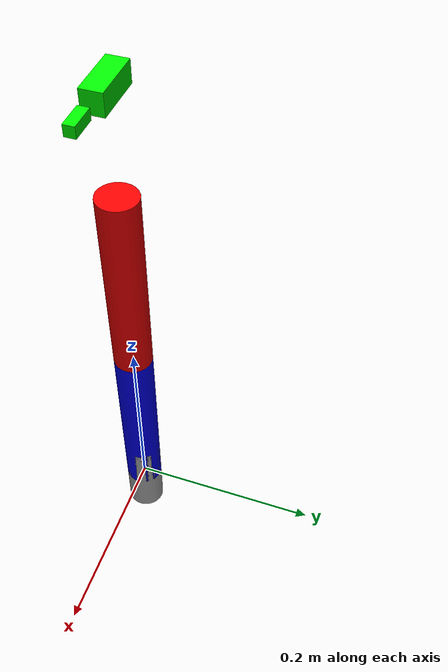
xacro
<?xml version="1.0"?>
<robot name="four_dof_arm" xmlns:xacro="http://ros.org/wiki/xacro">
  <!-- Define constants -->
  <xacro:property name="link_length" value="0.2" />
  <xacro:property name="link_radius" value="0.02" />
  <xacro:property name="base_height" value="0.1" />
  <xacro:property name="gripper_length" value="0.05" />
  <xacro:property name="pi" value="3.14159265359" />

  <!-- Base link -->
  <link name="base_link">
    <visual>
      <geometry>
        <cylinder radius="${link_radius}" length="${base_height}" />
      </geometry>
      <material name="silver">
        <color rgba="0.7 0.7 0.7 1.0" />
      </material>
    </visual>
    <collision>
      <geometry>
        <cylinder radius="${link_radius}" length="${base_height}" />
      </geometry>
    </collision>
    <inertial>
      <mass value="1.0" />
      <inertia ixx="0.01" ixy="0.0" ixz="0.0" iyy="0.01" iyz="0.0" izz="0.005" />
    </inertial>
  </link>

  <!-- Base to shoulder joint -->
  <joint name="base_joint" type="revolute">
    <parent link="base_link" />
    <child link="shoulder_link" />
    <origin xyz="0 0 ${base_height}" rpy="0 0 0" />
    <axis xyz="0 0 1" />
    <limit lower="-${pi/2}" upper="${pi/2}" effort="50" velocity="1.0" />
  </joint>

  <!-- Shoulder link -->
  <link name="shoulder_link">
    <visual>
      <geometry>
        <cylinder radius="${link_radius}" length="${link_length}" />
      </geometry>
      <material name="blue">
        <color rgba="0 0 1 1" />
      </material>
    </visual>
    <collision>
      <geometry>
        <cylinder radius="${link_radius}" length="${link_length}" />
      </geometry>
    </collision>
    <inertial>
      <mass value="0.5" />
      <inertia ixx="0.005" ixy="0.0" ixz="0.0" iyy="0.005" iyz="0.0" izz="0.002" />
    </inertial>
  </link>

  <!-- Shoulder to elbow joint -->
  <joint name="shoulder_joint" type="revolute">
    <parent link="shoulder_link" />
    <child link="elbow_link" />
    <origin xyz="0 0 ${link_length}" rpy="0 0 0" />
    <axis xyz="0 1 0" />
    <limit lower="-${pi/2}" upper="${pi/2}" effort="50" velocity="1.0" />
  </joint>

  <!-- Elbow link -->
  <link name="elbow_link">
    <visual>
      <geometry>
        <cylinder radius="${link_radius}" length="${link_length}" />
      </geometry>
      <material name="red">
        <color rgba="1 0 0 1" />
      </material>
    </visual>
    <collision>
      <geometry>
        <cylinder radius="${link_radius}" length="${link_length}" />
      </geometry>
    </collision>
    <inertial>
      <mass value="0.5" />
      <inertia ixx="0.005" ixy="0.0" ixz="0.0" iyy="0.005" iyz="0.0" izz="0.002" />
    </inertial>
  </link>

  <!-- Elbow to gripper joint -->
  <joint name="elbow_joint" type="revolute">
    <parent link="elbow_link" />
    <child link="gripper_link" />
    <origin xyz="0 0 ${link_length}" rpy="0 0 0" />
    <axis xyz="0 1 0" />
    <limit lower="-${pi/2}" upper="${pi/2}" effort="50" velocity="1.0" />
  </joint>

  <!-- Gripper link -->
  <link name="gripper_link">
    <visual>
      <geometry>
        <box size="${gripper_length} ${link_radius} ${link_radius}" />
      </geometry>
      <material name="green">
        <color rgba="0 1 0 1" />
      </material>
    </visual>
    <collision>
      <geometry>
        <box size="${gripper_length} ${link_radius} ${link_radius}" />
      </geometry>
    </collision>
    <inertial>
      <mass value="0.2" />
      <inertia ixx="0.001" ixy="0.0" ixz="0.0" iyy="0.001" iyz="0.0" izz="0.0005" />
    </inertial>
  </link>

  <!-- Gripper joint -->
  <joint name="gripper_joint" type="revolute">
    <parent link="gripper_link" />
    <child link="gripper_tip" />
    <origin xyz="${gripper_length} 0 0" rpy="0 0 0" />
    <axis xyz="1 0 0" />
    <limit lower="0" upper="${pi/4}" effort="20" velocity="1.0" />
  </joint>

  <!-- Gripper tip link -->
  <link name="gripper_tip">
    <visual>
      <geometry>
        <box size="${gripper_length/2} ${link_radius/2} ${link_radius/2}" />
      </geometry>
      <material name="green" />
    </visual>
    <collision>
      <geometry>
        <box size="${gripper_length/2} ${link_radius/2} ${link_radius/2}" />
      </geometry>
    </collision>
    <inertial>
      <mass value="0.1" />
      <inertia ixx="0.0005" ixy="0.0" ixz="0.0" iyy="0.0005" iyz="0.0" izz="0.0002" />
    </inertial>
  </link>

  <!-- Gazebo plugins -->
  <gazebo>
    <plugin name="gazebo_ros_control" filename="libgazebo_ros_control.so">
      <robotNamespace>/four_dof_arm</robotNamespace>
    </plugin>
    <plugin name="gazebo_ros_joint_state_publisher" filename="libgazebo_ros_joint_state_publisher.so">
      <robotNamespace>/four_dof_arm</robotNamespace>
      <updateRate>100</updateRate>
    </plugin>
  </gazebo>

  <!-- Gazebo material properties -->
  <gazebo reference="base_link">
    <material>Gazebo/Silver</material>
  </gazebo>
  <gazebo reference="shoulder_link">
    <material>Gazebo/Blue</material>
  </gazebo>
  <gazebo reference="elbow_link">
    <material>Gazebo/Red</material>
  </gazebo>
  <gazebo reference="gripper_link">
    <material>Gazebo/Green</material>
  </gazebo>
  <gazebo reference="gripper_tip">
    <material>Gazebo/Green</material>
  </gazebo>
</robot>
